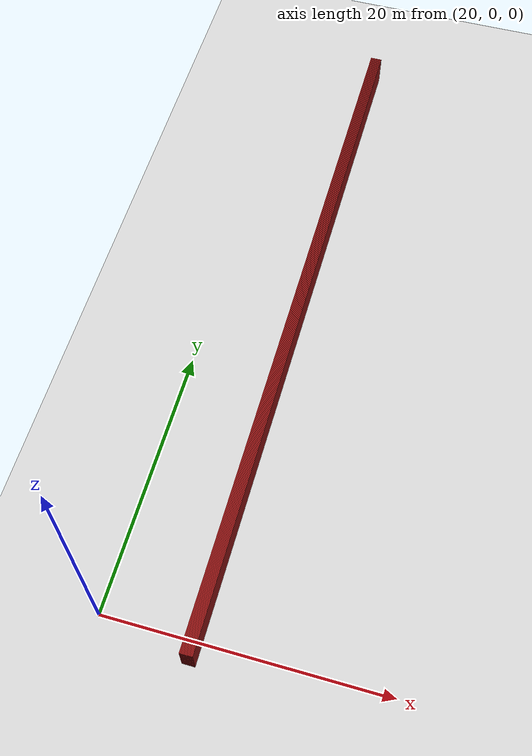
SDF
<sdf version="1.4">
 <world name="1_wall">
  <model name="ground_plane">
   <static>1</static>
   <link name="link">
    <collision name="collision">
     <geometry><plane><normal>0 0 1</normal><size>1000 1000</size></plane></geometry>
     <surface><friction><ode><mu>100</mu><mu2>50</mu2></ode></friction></surface>
    </collision>
    <visual name="visual">
     <cast_shadows>0</cast_shadows>
     <geometry><plane><normal>0 0 1</normal><size>10000 10000</size></plane></geometry>
     <material>
      <script><uri>file://media/materials/scripts/gazebo.material</uri><name>Gazebo/Grey</name></script>
     </material>
    </visual>
    <velocity_decay><linear>0</linear><angular>0</angular></velocity_decay>
   </link>
  </model>
  <model name="Wall_555">
   <static>1</static>
   <link name="Wall_555">
    <collision name="Wall_Collision_555">
     <geometry><box><size>53.65 0.05 2.5</size></box></geometry>
     <pose>0 0 1.25 0 -0 0</pose>
    </collision>
    <visual name="Wall_Visual_555">
     <pose>0 0 1.25 0 -0 0</pose>
     <geometry><box><size>53.65 0.05 2.5</size></box></geometry>
     <material>
      <script><uri>file://media/materials/scripts/gazebo.material</uri><name>Gazebo/Red</name></script>
     </material>
    </visual>
    <velocity_decay><linear>0</linear><angular>0</angular></velocity_decay>
    <pose>26.25 25.3 0 0 0 1.5707963267948966</pose>
   </link>
  </model>
  <model name="Wall_556">
   <static>1</static>
   <link name="Wall_556">
    <collision name="Wall_Collision_556">
     <geometry><box><size>53.65 0.05 2.5</size></box></geometry>
     <pose>0 0 1.25 0 -0 0</pose>
    </collision>
    <visual name="Wall_Visual_556">
     <pose>0 0 1.25 0 -0 0</pose>
     <geometry><box><size>53.65 0.05 2.5</size></box></geometry>
     <material>
      <script><uri>file://media/materials/scripts/gazebo.material</uri><name>Gazebo/Red</name></script>
     </material>
    </visual>
    <velocity_decay><linear>0</linear><angular>0</angular></velocity_decay>
    <pose>26.3 25.3 0 0 0 1.5707963267948966</pose>
   </link>
  </model>
  <model name="Wall_557">
   <static>1</static>
   <link name="Wall_557">
    <collision name="Wall_Collision_557">
     <geometry><box><size>53.65 0.05 2.5</size></box></geometry>
     <pose>0 0 1.25 0 -0 0</pose>
    </collision>
    <visual name="Wall_Visual_557">
     <pose>0 0 1.25 0 -0 0</pose>
     <geometry><box><size>53.65 0.05 2.5</size></box></geometry>
     <material>
      <script><uri>file://media/materials/scripts/gazebo.material</uri><name>Gazebo/Red</name></script>
     </material>
    </visual>
    <velocity_decay><linear>0</linear><angular>0</angular></velocity_decay>
    <pose>26.35 25.3 0 0 0 1.5707963267948966</pose>
   </link>
  </model>
  <model name="Wall_558">
   <static>1</static>
   <link name="Wall_558">
    <collision name="Wall_Collision_558">
     <geometry><box><size>53.65 0.05 2.5</size></box></geometry>
     <pose>0 0 1.25 0 -0 0</pose>
    </collision>
    <visual name="Wall_Visual_558">
     <pose>0 0 1.25 0 -0 0</pose>
     <geometry><box><size>53.65 0.05 2.5</size></box></geometry>
     <material>
      <script><uri>file://media/materials/scripts/gazebo.material</uri><name>Gazebo/Red</name></script>
     </material>
    </visual>
    <velocity_decay><linear>0</linear><angular>0</angular></velocity_decay>
    <pose>26.4 25.3 0 0 0 1.5707963267948966</pose>
   </link>
  </model>
  <model name="Wall_559">
   <static>1</static>
   <link name="Wall_559">
    <collision name="Wall_Collision_559">
     <geometry><box><size>53.65 0.05 2.5</size></box></geometry>
     <pose>0 0 1.25 0 -0 0</pose>
    </collision>
    <visual name="Wall_Visual_559">
     <pose>0 0 1.25 0 -0 0</pose>
     <geometry><box><size>53.65 0.05 2.5</size></box></geometry>
     <material>
      <script><uri>file://media/materials/scripts/gazebo.material</uri><name>Gazebo/Red</name></script>
     </material>
    </visual>
    <velocity_decay><linear>0</linear><angular>0</angular></velocity_decay>
    <pose>26.45 25.3 0 0 0 1.5707963267948966</pose>
   </link>
  </model>
  <model name="Wall_560">
   <static>1</static>
   <link name="Wall_560">
    <collision name="Wall_Collision_560">
     <geometry><box><size>53.65 0.05 2.5</size></box></geometry>
     <pose>0 0 1.25 0 -0 0</pose>
    </collision>
    <visual name="Wall_Visual_560">
     <pose>0 0 1.25 0 -0 0</pose>
     <geometry><box><size>53.65 0.05 2.5</size></box></geometry>
     <material>
      <script><uri>file://media/materials/scripts/gazebo.material</uri><name>Gazebo/Red</name></script>
     </material>
    </visual>
    <velocity_decay><linear>0</linear><angular>0</angular></velocity_decay>
    <pose>26.5 25.3 0 0 0 1.5707963267948966</pose>
   </link>
  </model>
  <model name="Wall_561">
   <static>1</static>
   <link name="Wall_561">
    <collision name="Wall_Collision_561">
     <geometry><box><size>53.65 0.05 2.5</size></box></geometry>
     <pose>0 0 1.25 0 -0 0</pose>
    </collision>
    <visual name="Wall_Visual_561">
     <pose>0 0 1.25 0 -0 0</pose>
     <geometry><box><size>53.65 0.05 2.5</size></box></geometry>
     <material>
      <script><uri>file://media/materials/scripts/gazebo.material</uri><name>Gazebo/Red</name></script>
     </material>
    </visual>
    <velocity_decay><linear>0</linear><angular>0</angular></velocity_decay>
    <pose>26.55 25.3 0 0 0 1.5707963267948966</pose>
   </link>
  </model>
  <model name="Wall_562">
   <static>1</static>
   <link name="Wall_562">
    <collision name="Wall_Collision_562">
     <geometry><box><size>53.65 0.05 2.5</size></box></geometry>
     <pose>0 0 1.25 0 -0 0</pose>
    </collision>
    <visual name="Wall_Visual_562">
     <pose>0 0 1.25 0 -0 0</pose>
     <geometry><box><size>53.65 0.05 2.5</size></box></geometry>
     <material>
      <script><uri>file://media/materials/scripts/gazebo.material</uri><name>Gazebo/Red</name></script>
     </material>
    </visual>
    <velocity_decay><linear>0</linear><angular>0</angular></velocity_decay>
    <pose>26.6 25.3 0 0 0 1.5707963267948966</pose>
   </link>
  </model>
  <model name="Wall_563">
   <static>1</static>
   <link name="Wall_563">
    <collision name="Wall_Collision_563">
     <geometry><box><size>53.65 0.05 2.5</size></box></geometry>
     <pose>0 0 1.25 0 -0 0</pose>
    </collision>
    <visual name="Wall_Visual_563">
     <pose>0 0 1.25 0 -0 0</pose>
     <geometry><box><size>53.65 0.05 2.5</size></box></geometry>
     <material>
      <script><uri>file://media/materials/scripts/gazebo.material</uri><name>Gazebo/Red</name></script>
     </material>
    </visual>
    <velocity_decay><linear>0</linear><angular>0</angular></velocity_decay>
    <pose>26.65 25.3 0 0 0 1.5707963267948966</pose>
   </link>
  </model>
  <model name="Wall_564">
   <static>1</static>
   <link name="Wall_564">
    <collision name="Wall_Collision_564">
     <geometry><box><size>53.65 0.05 2.5</size></box></geometry>
     <pose>0 0 1.25 0 -0 0</pose>
    </collision>
    <visual name="Wall_Visual_564">
     <pose>0 0 1.25 0 -0 0</pose>
     <geometry><box><size>53.65 0.05 2.5</size></box></geometry>
     <material>
      <script><uri>file://media/materials/scripts/gazebo.material</uri><name>Gazebo/Red</name></script>
     </material>
    </visual>
    <velocity_decay><linear>0</linear><angular>0</angular></velocity_decay>
    <pose>26.7 25.3 0 0 0 1.5707963267948966</pose>
   </link>
  </model>
  <model name="Wall_565">
   <static>1</static>
   <link name="Wall_565">
    <collision name="Wall_Collision_565">
     <geometry><box><size>53.65 0.05 2.5</size></box></geometry>
     <pose>0 0 1.25 0 -0 0</pose>
    </collision>
    <visual name="Wall_Visual_565">
     <pose>0 0 1.25 0 -0 0</pose>
     <geometry><box><size>53.65 0.05 2.5</size></box></geometry>
     <material>
      <script><uri>file://media/materials/scripts/gazebo.material</uri><name>Gazebo/Red</name></script>
     </material>
    </visual>
    <velocity_decay><linear>0</linear><angular>0</angular></velocity_decay>
    <pose>26.75 25.3 0 0 0 1.5707963267948966</pose>
   </link>
  </model>
  <model name="Wall_566">
   <static>1</static>
   <link name="Wall_566">
    <collision name="Wall_Collision_566">
     <geometry><box><size>53.65 0.05 2.5</size></box></geometry>
     <pose>0 0 1.25 0 -0 0</pose>
    </collision>
    <visual name="Wall_Visual_566">
     <pose>0 0 1.25 0 -0 0</pose>
     <geometry><box><size>53.65 0.05 2.5</size></box></geometry>
     <material>
      <script><uri>file://media/materials/scripts/gazebo.material</uri><name>Gazebo/Red</name></script>
     </material>
    </visual>
    <velocity_decay><linear>0</linear><angular>0</angular></velocity_decay>
    <pose>26.8 25.3 0 0 0 1.5707963267948966</pose>
   </link>
  </model>
  <model name="Wall_567">
   <static>1</static>
   <link name="Wall_567">
    <collision name="Wall_Collision_567">
     <geometry><box><size>53.65 0.05 2.5</size></box></geometry>
     <pose>0 0 1.25 0 -0 0</pose>
    </collision>
    <visual name="Wall_Visual_567">
     <pose>0 0 1.25 0 -0 0</pose>
     <geometry><box><size>53.65 0.05 2.5</size></box></geometry>
     <material>
      <script><uri>file://media/materials/scripts/gazebo.material</uri><name>Gazebo/Red</name></script>
     </material>
    </visual>
    <velocity_decay><linear>0</linear><angular>0</angular></velocity_decay>
    <pose>26.85 25.3 0 0 0 1.5707963267948966</pose>
   </link>
  </model>
  <model name="Wall_568">
   <static>1</static>
   <link name="Wall_568">
    <collision name="Wall_Collision_568">
     <geometry><box><size>53.65 0.05 2.5</size></box></geometry>
     <pose>0 0 1.25 0 -0 0</pose>
    </collision>
    <visual name="Wall_Visual_568">
     <pose>0 0 1.25 0 -0 0</pose>
     <geometry><box><size>53.65 0.05 2.5</size></box></geometry>
     <material>
      <script><uri>file://media/materials/scripts/gazebo.material</uri><name>Gazebo/Red</name></script>
     </material>
    </visual>
    <velocity_decay><linear>0</linear><angular>0</angular></velocity_decay>
    <pose>26.9 25.3 0 0 0 1.5707963267948966</pose>
   </link>
  </model>
  <model name="Wall_569">
   <static>1</static>
   <link name="Wall_569">
    <collision name="Wall_Collision_569">
     <geometry><box><size>53.65 0.05 2.5</size></box></geometry>
     <pose>0 0 1.25 0 -0 0</pose>
    </collision>
    <visual name="Wall_Visual_569">
     <pose>0 0 1.25 0 -0 0</pose>
     <geometry><box><size>53.65 0.05 2.5</size></box></geometry>
     <material>
      <script><uri>file://media/materials/scripts/gazebo.material</uri><name>Gazebo/Red</name></script>
     </material>
    </visual>
    <velocity_decay><linear>0</linear><angular>0</angular></velocity_decay>
    <pose>26.95 25.3 0 0 0 1.5707963267948966</pose>
   </link>
  </model>
  <model name="Wall_570">
   <static>1</static>
   <link name="Wall_570">
    <collision name="Wall_Collision_570">
     <geometry><box><size>53.65 0.05 2.5</size></box></geometry>
     <pose>0 0 1.25 0 -0 0</pose>
    </collision>
    <visual name="Wall_Visual_570">
     <pose>0 0 1.25 0 -0 0</pose>
     <geometry><box><size>53.65 0.05 2.5</size></box></geometry>
     <material>
      <script><uri>file://media/materials/scripts/gazebo.material</uri><name>Gazebo/Red</name></script>
     </material>
    </visual>
    <velocity_decay><linear>0</linear><angular>0</angular></velocity_decay>
    <pose>27.0 25.3 0 0 0 1.5707963267948966</pose>
   </link>
  </model>
  <model name="Wall_571">
   <static>1</static>
   <link name="Wall_571">
    <collision name="Wall_Collision_571">
     <geometry><box><size>53.65 0.05 2.5</size></box></geometry>
     <pose>0 0 1.25 0 -0 0</pose>
    </collision>
    <visual name="Wall_Visual_571">
     <pose>0 0 1.25 0 -0 0</pose>
     <geometry><box><size>53.65 0.05 2.5</size></box></geometry>
     <material>
      <script><uri>file://media/materials/scripts/gazebo.material</uri><name>Gazebo/Red</name></script>
     </material>
    </visual>
    <velocity_decay><linear>0</linear><angular>0</angular></velocity_decay>
    <pose>27.05 25.3 0 0 0 1.5707963267948966</pose>
   </link>
  </model>
  <model name="Wall_572">
   <static>1</static>
   <link name="Wall_572">
    <collision name="Wall_Collision_572">
     <geometry><box><size>53.65 0.05 2.5</size></box></geometry>
     <pose>0 0 1.25 0 -0 0</pose>
    </collision>
    <visual name="Wall_Visual_572">
     <pose>0 0 1.25 0 -0 0</pose>
     <geometry><box><size>53.65 0.05 2.5</size></box></geometry>
     <material>
      <script><uri>file://media/materials/scripts/gazebo.material</uri><name>Gazebo/Red</name></script>
     </material>
    </visual>
    <velocity_decay><linear>0</linear><angular>0</angular></velocity_decay>
    <pose>27.1 25.3 0 0 0 1.5707963267948966</pose>
   </link>
  </model>
 </world>
</sdf>
